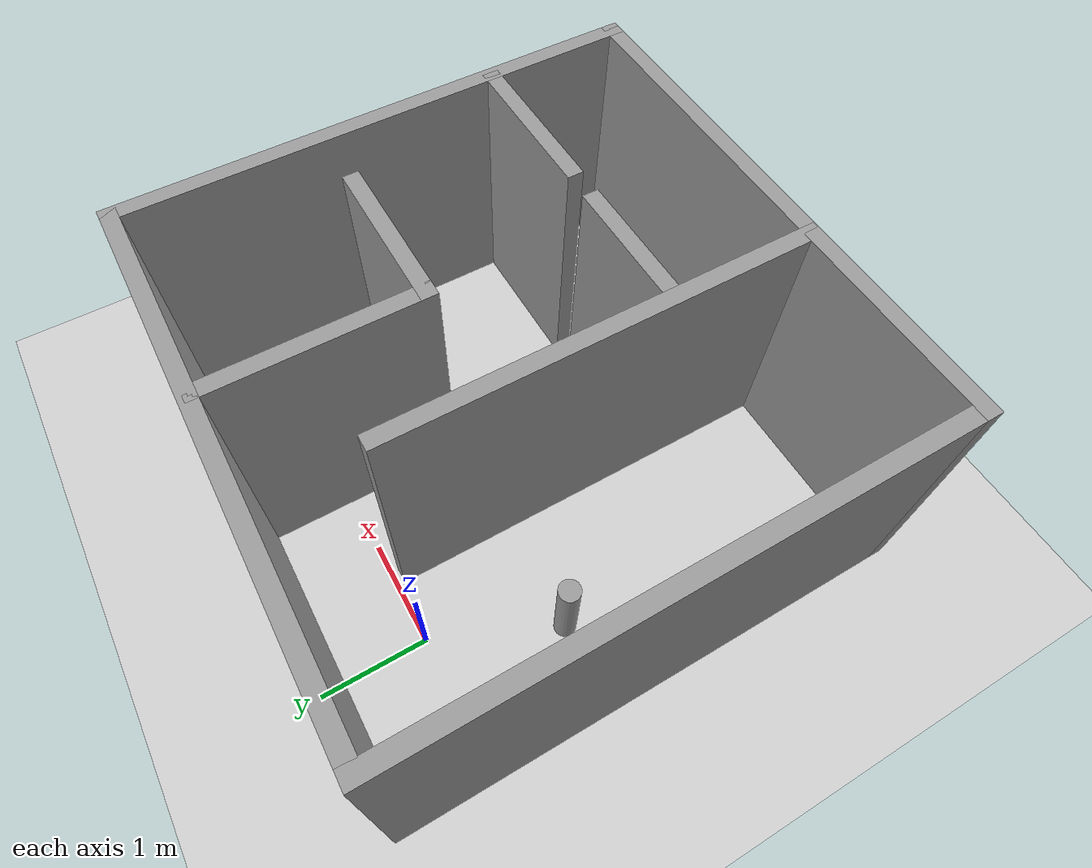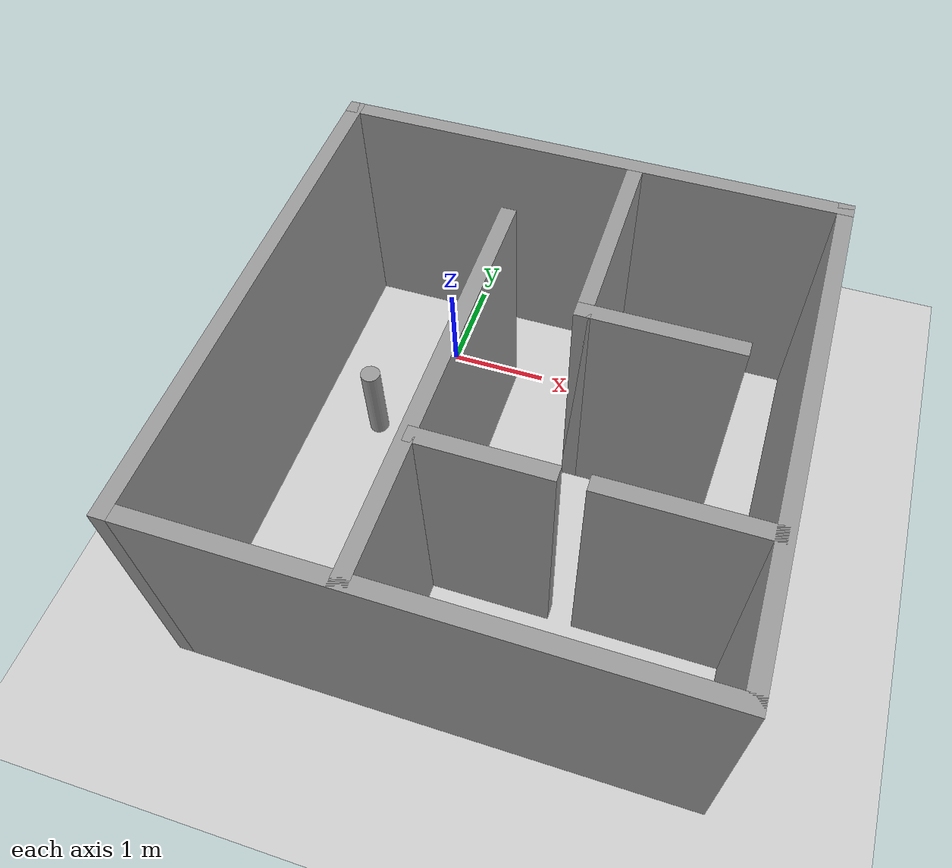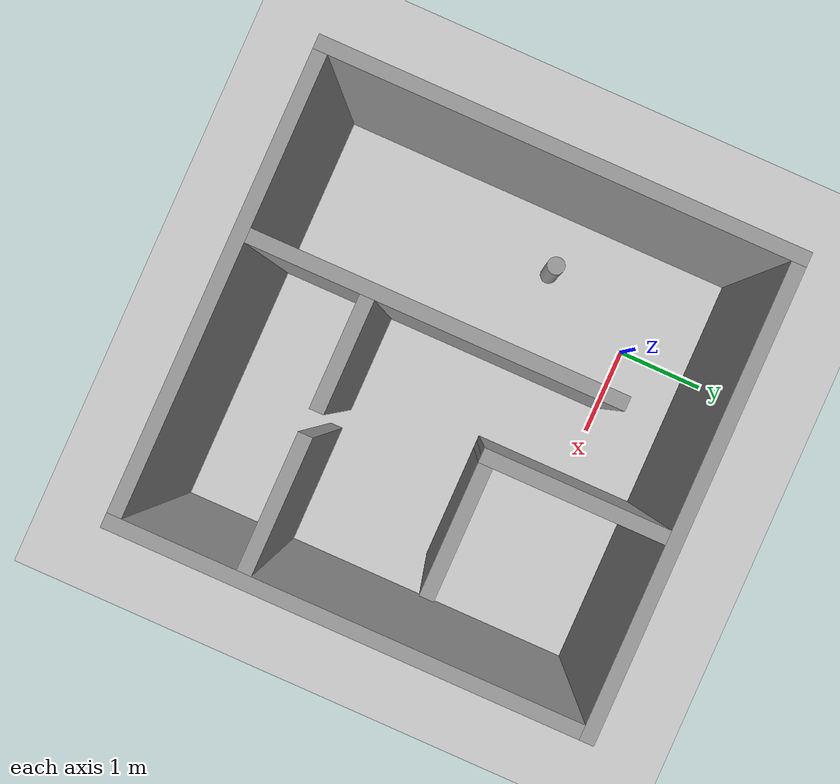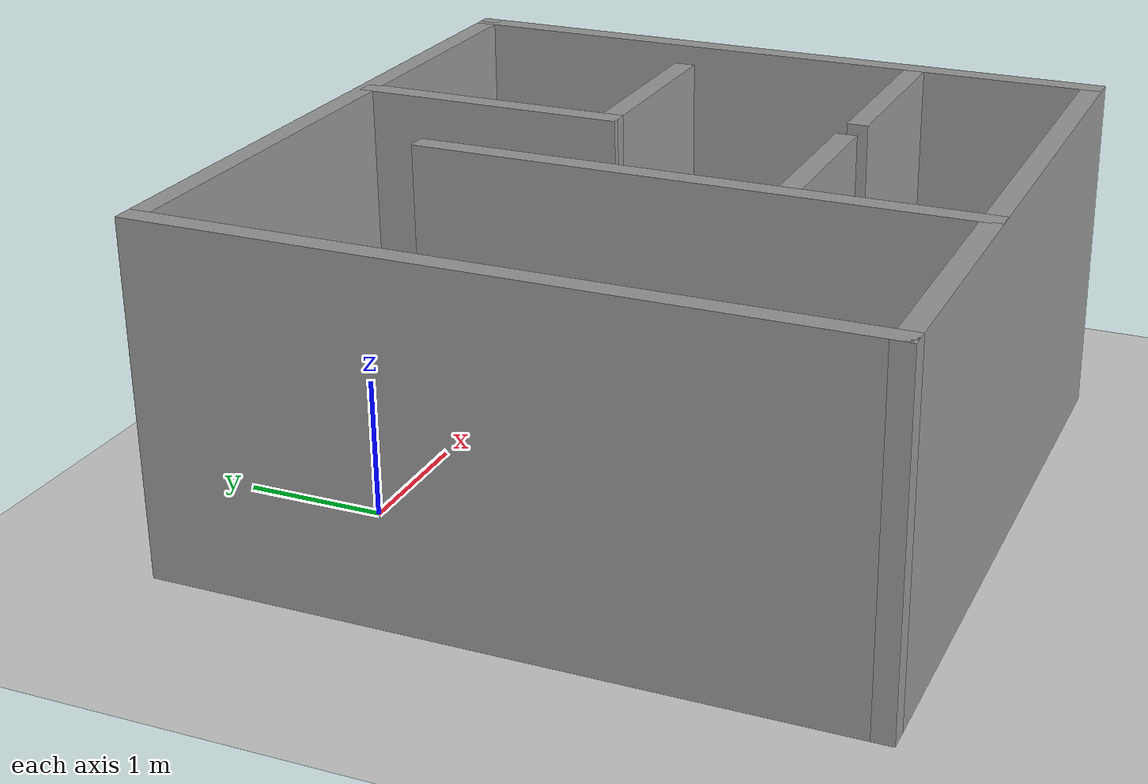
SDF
<sdf version="1.7">
 <world name="default">
  <light name="sun" type="directional">
   <pose>0 0 10 0 -0 0</pose>
   <diffuse>0.8 0.8 0.8 1</diffuse>
   <specular>0.2 0.2 0.2 1</specular>
   <attenuation>
    <range>1000</range>
    <constant>0.9</constant>
    <linear>0.01</linear>
    <quadratic>0.001</quadratic>
   </attenuation>
   <direction>-0.5 0.1 -0.9</direction>
   <spot><inner_angle>0</inner_angle><outer_angle>0</outer_angle><falloff>0</falloff></spot>
  </light>
  <model name="ground_plane">
   <static>1</static>
   <link name="link">
    <collision name="collision">
     <geometry><plane><normal>0 0 1</normal><size>100 100</size></plane></geometry>
     <surface>
      <contact><collide_bitmask>65535</collide_bitmask></contact>
      <friction><ode><mu>100</mu><mu2>50</mu2></ode></friction>
     </surface>
    </collision>
    <visual name="visual">
     <cast_shadows>0</cast_shadows>
     <geometry><plane><normal>0 0 1</normal><size>100 100</size></plane></geometry>
     <material>
      <script><uri>file://media/materials/scripts/gazebo.material</uri><name>Gazebo/Grey</name></script>
     </material>
    </visual>
   </link>
  </model>
  <gravity>0 0 -9.8</gravity>
  <magnetic_field>6e-06 2.3e-05 -4.2e-05</magnetic_field>
  <atmosphere type="adiabatic"/>
  <physics type="ode">
   <max_step_size>0.001</max_step_size>
   <real_time_factor>1</real_time_factor>
   <real_time_update_rate>1000</real_time_update_rate>
  </physics>
  <scene><ambient>0.4 0.4 0.4 1</ambient><background>0.7 0.7 0.7 1</background><shadows>1</shadows></scene>
  <spherical_coordinates>
   <surface_model>EARTH_WGS84</surface_model>
   <latitude_deg>0</latitude_deg>
   <longitude_deg>0</longitude_deg>
   <elevation>0</elevation>
   <heading_deg>0</heading_deg>
  </spherical_coordinates>
  <model name="Untitled">
   <pose>1.17869 -1.57113 0 0 -0 0</pose>
   <link name="Wall_16">
    <collision name="Wall_16_Collision">
     <geometry><box><size>5 0.15 2.5</size></box></geometry>
     <pose>0 0 1.25 0 -0 0</pose>
    </collision>
    <visual name="Wall_16_Visual">
     <pose>0 0 1.25 0 -0 0</pose>
     <geometry><box><size>5 0.15 2.5</size></box></geometry>
     <material>
      <script><uri>file://media/materials/scripts/gazebo.material</uri><name>Gazebo/Grey</name></script>
      <ambient>1 1 1 1</ambient>
     </material>
     <meta><layer>0</layer></meta>
    </visual>
    <pose>-2.425 0 0 0 -0 1.5708</pose>
   </link>
   <link name="Wall_19">
    <collision name="Wall_19_Collision">
     <geometry><box><size>5 0.15 2.5</size></box></geometry>
     <pose>0 0 1.25 0 -0 0</pose>
    </collision>
    <visual name="Wall_19_Visual">
     <pose>0 0 1.25 0 -0 0</pose>
     <geometry><box><size>5 0.15 2.5</size></box></geometry>
     <material>
      <script><uri>file://media/materials/scripts/gazebo.material</uri><name>Gazebo/Grey</name></script>
      <ambient>1 1 1 1</ambient>
     </material>
     <meta><layer>0</layer></meta>
    </visual>
    <pose>0 2.425 0 0 -0 0</pose>
   </link>
   <link name="Wall_20">
    <collision name="Wall_20_Collision">
     <geometry><box><size>5 0.15 2.5</size></box></geometry>
     <pose>0 0 1.25 0 -0 0</pose>
    </collision>
    <visual name="Wall_20_Visual">
     <pose>0 0 1.25 0 -0 0</pose>
     <geometry><box><size>5 0.15 2.5</size></box></geometry>
     <material>
      <script><uri>file://media/materials/scripts/gazebo.material</uri><name>Gazebo/Grey</name></script>
      <ambient>1 1 1 1</ambient>
     </material>
     <meta><layer>0</layer></meta>
    </visual>
    <pose>2.425 0 0 0 -0 -1.5708</pose>
   </link>
   <link name="Wall_21">
    <collision name="Wall_21_Collision">
     <geometry><box><size>5 0.15 2.5</size></box></geometry>
     <pose>0 0 1.25 0 -0 0</pose>
    </collision>
    <visual name="Wall_21_Visual">
     <pose>0 0 1.25 0 -0 0</pose>
     <geometry><box><size>5 0.15 2.5</size></box></geometry>
     <material>
      <script><uri>file://media/materials/scripts/gazebo.material</uri><name>Gazebo/Grey</name></script>
      <ambient>1 1 1 1</ambient>
     </material>
     <meta><layer>0</layer></meta>
    </visual>
    <pose>0 -2.425 0 0 -0 3.14159</pose>
   </link>
   <link name="Wall_24">
    <collision name="Wall_24_Collision">
     <geometry><box><size>2 0.15 2.5</size></box></geometry>
     <pose>0 0 1.25 0 -0 0</pose>
    </collision>
    <visual name="Wall_24_Visual">
     <pose>0 0 1.25 0 -0 0</pose>
     <geometry><box><size>2 0.15 2.5</size></box></geometry>
     <material>
      <script><uri>file://media/materials/scripts/gazebo.material</uri><name>Gazebo/Grey</name></script>
      <ambient>1 1 1 1</ambient>
     </material>
     <meta><layer>0</layer></meta>
    </visual>
    <pose>0.455032 1.45427 0 0 -0 -1.5708</pose>
   </link>
   <link name="Wall_26">
    <collision name="Wall_26_Collision">
     <geometry><box><size>4 0.15 2.5</size></box></geometry>
     <pose>0 0 1.25 0 -0 0</pose>
    </collision>
    <visual name="Wall_26_Visual">
     <pose>0 0 1.25 0 -0 0</pose>
     <geometry><box><size>4 0.15 2.5</size></box></geometry>
     <material>
      <script><uri>file://media/materials/scripts/gazebo.material</uri><name>Gazebo/Grey</name></script>
      <ambient>1 1 1 1</ambient>
     </material>
     <meta><layer>0</layer></meta>
    </visual>
    <pose>-0.524361 -0.495506 0 0 -0 1.5708</pose>
   </link>
   <link name="Wall_28">
    <collision name="Wall_28_Collision">
     <geometry><box><size>1.5 0.15 2.5</size></box></geometry>
     <pose>0 0 1.25 0 -0 0</pose>
    </collision>
    <visual name="Wall_28_Visual">
     <pose>0 0 1.25 0 -0 0</pose>
     <geometry><box><size>1.5 0.15 2.5</size></box></geometry>
     <material>
      <script><uri>file://media/materials/scripts/gazebo.material</uri><name>Gazebo/Grey</name></script>
      <ambient>1 1 1 1</ambient>
     </material>
     <meta><layer>0</layer></meta>
    </visual>
    <pose>1.13003 0.52927 0 0 -0 0</pose>
   </link>
   <link name="Wall_30">
    <collision name="Wall_30_Collision">
     <geometry><box><size>1.25 0.15 2.5</size></box></geometry>
     <pose>0 0 1.25 0 -0 0</pose>
    </collision>
    <visual name="Wall_30_Visual">
     <pose>0 0 1.25 0 -0 0</pose>
     <geometry><box><size>1.25 0.15 2.5</size></box></geometry>
     <material>
      <script><uri>file://media/materials/scripts/gazebo.material</uri><name>Gazebo/Grey</name></script>
      <ambient>1 1 1 1</ambient>
     </material>
     <meta><layer>0</layer></meta>
    </visual>
    <pose>0.085449 -1.10468 0 0 -0 0</pose>
   </link>
   <link name="Wall_32">
    <collision name="Wall_32_Collision">
     <geometry><box><size>1.5 0.15 2.5</size></box></geometry>
     <pose>0 0 1.25 0 -0 0</pose>
    </collision>
    <visual name="Wall_32_Visual">
     <pose>0 0 1.25 0 -0 0</pose>
     <geometry><box><size>1.5 0.15 2.5</size></box></geometry>
     <material>
      <script><uri>file://media/materials/scripts/gazebo.material</uri><name>Gazebo/Grey</name></script>
      <ambient>1 1 1 1</ambient>
     </material>
     <meta><layer>0</layer></meta>
    </visual>
    <pose>1.69439 -1.10971 0 0 -0 3.14159</pose>
   </link>
   <static>1</static>
  </model>
  <model name="left_leg">
   <pose>-0.484317 -1.132027 0.45 0 0 0</pose>
   <link name="link">
    <inertial>
     <mass>5</mass>
     <inertia><ixx>0.034</ixx><ixy>0</ixy><ixz>0</ixz><iyy>0.034</iyy><iyz>0</iyz><izz>0.025</izz></inertia>
    </inertial>
    <collision name="collision">
     <geometry><cylinder><radius>0.1</radius><length>0.9</length></cylinder></geometry>
    </collision>
    <visual name="visual">
     <geometry><cylinder><radius>0.1</radius><length>0.9</length></cylinder></geometry>
     <material>
      <script><name>Gazebo/Grey</name><uri>file://media/materials/scripts/gazebo.material</uri></script>
     </material>
    </visual>
   </link>
  </model>
 </world>
</sdf>
